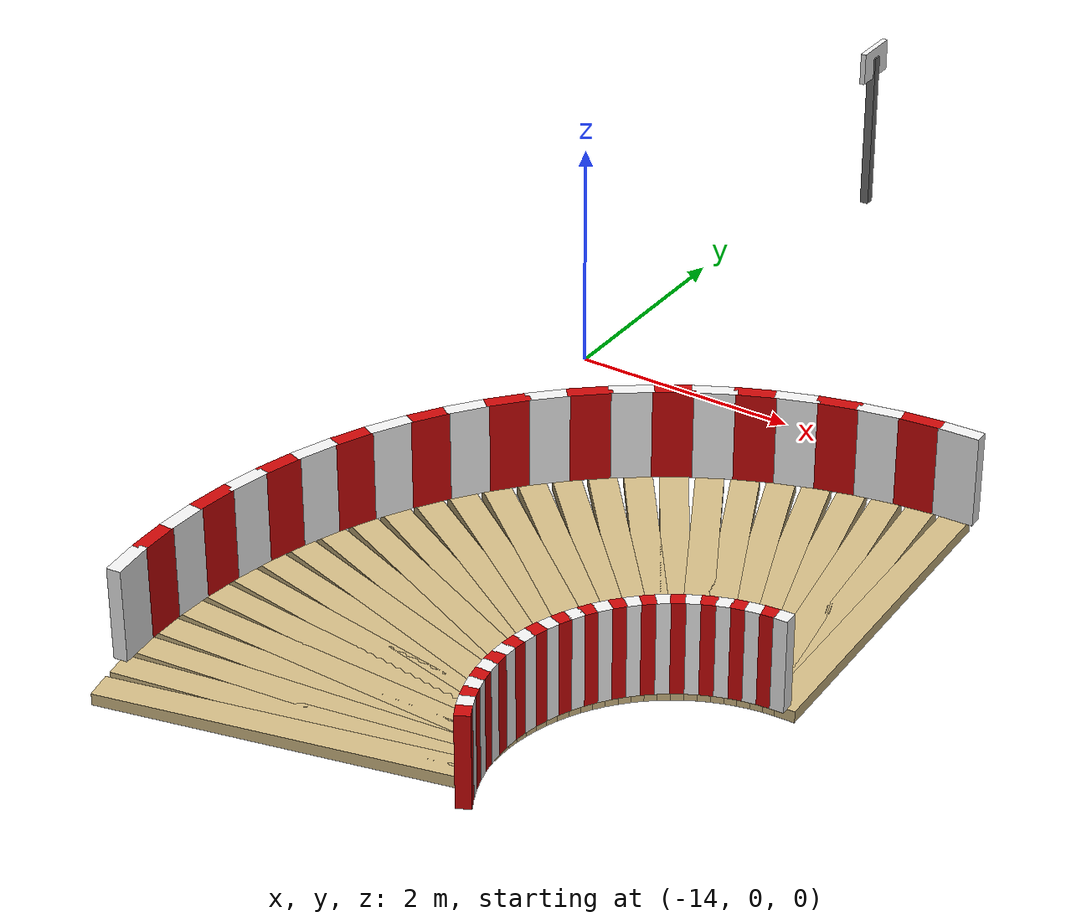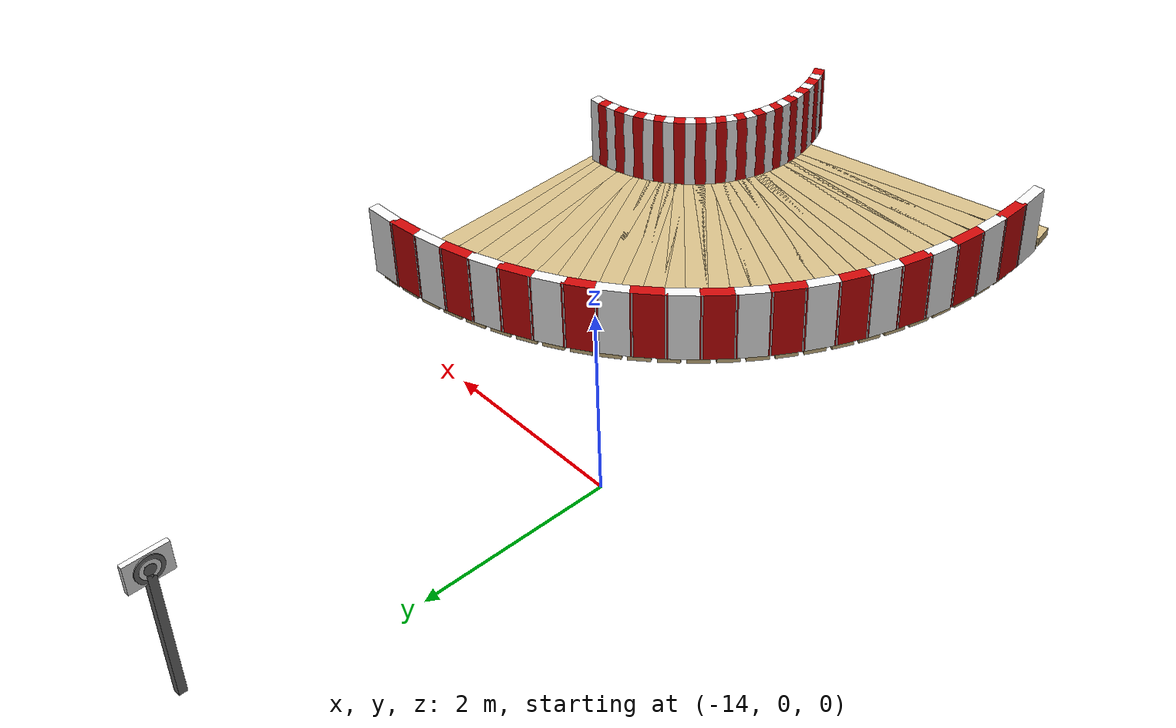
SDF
<sdf version="1.6">
 <world name="evrenos_teknofest_2026">
  <include><uri>model://sun</uri></include>
  <model name="main_course">
   <static>true</static>
   <link name="left_turn_road_20">
    <pose>-12.9216 -5.6812 -0.0500 0.000000 0.000000 -4.483315</pose>
    <collision name="left_turn_road_20_collision">
     <geometry><box><size>0.2356 3.0000 0.1000</size></box></geometry>
    </collision>
    <visual name="left_turn_road_20_visual">
     <geometry><box><size>0.2356 3.0000 0.1000</size></box></geometry>
     <material><ambient>0.82 0.73 0.52 1</ambient><diffuse>0.82 0.73 0.52 1</diffuse></material>
    </visual>
   </link>
   <link name="left_turn_road_21">
    <pose>-12.9599 -5.4887 -0.0500 0.000000 0.000000 -4.548764</pose>
    <collision name="left_turn_road_21_collision">
     <geometry><box><size>0.2356 3.0000 0.1000</size></box></geometry>
    </collision>
    <visual name="left_turn_road_21_visual">
     <geometry><box><size>0.2356 3.0000 0.1000</size></box></geometry>
     <material><ambient>0.82 0.73 0.52 1</ambient><diffuse>0.82 0.73 0.52 1</diffuse></material>
    </visual>
   </link>
   <link name="left_turn_road_22">
    <pose>-12.9856 -5.2941 -0.0500 0.000000 0.000000 -4.614214</pose>
    <collision name="left_turn_road_22_collision">
     <geometry><box><size>0.2356 3.0000 0.1000</size></box></geometry>
    </collision>
    <visual name="left_turn_road_22_visual">
     <geometry><box><size>0.2356 3.0000 0.1000</size></box></geometry>
     <material><ambient>0.82 0.73 0.52 1</ambient><diffuse>0.82 0.73 0.52 1</diffuse></material>
    </visual>
   </link>
   <link name="left_turn_road_23">
    <pose>-12.9984 -5.0982 -0.0500 0.000000 0.000000 -4.679664</pose>
    <collision name="left_turn_road_23_collision">
     <geometry><box><size>0.2356 3.0000 0.1000</size></box></geometry>
    </collision>
    <visual name="left_turn_road_23_visual">
     <geometry><box><size>0.2356 3.0000 0.1000</size></box></geometry>
     <material><ambient>0.82 0.73 0.52 1</ambient><diffuse>0.82 0.73 0.52 1</diffuse></material>
    </visual>
   </link>
   <link name="left_turn_road_24">
    <pose>-12.9984 -4.9018 -0.0500 0.000000 0.000000 -4.745114</pose>
    <collision name="left_turn_road_24_collision">
     <geometry><box><size>0.2356 3.0000 0.1000</size></box></geometry>
    </collision>
    <visual name="left_turn_road_24_visual">
     <geometry><box><size>0.2356 3.0000 0.1000</size></box></geometry>
     <material><ambient>0.82 0.73 0.52 1</ambient><diffuse>0.82 0.73 0.52 1</diffuse></material>
    </visual>
   </link>
   <link name="left_turn_road_25">
    <pose>-12.9856 -4.7059 -0.0500 0.000000 0.000000 -4.810564</pose>
    <collision name="left_turn_road_25_collision">
     <geometry><box><size>0.2356 3.0000 0.1000</size></box></geometry>
    </collision>
    <visual name="left_turn_road_25_visual">
     <geometry><box><size>0.2356 3.0000 0.1000</size></box></geometry>
     <material><ambient>0.82 0.73 0.52 1</ambient><diffuse>0.82 0.73 0.52 1</diffuse></material>
    </visual>
   </link>
   <link name="left_turn_road_26">
    <pose>-12.9599 -4.5113 -0.0500 0.000000 0.000000 -4.876014</pose>
    <collision name="left_turn_road_26_collision">
     <geometry><box><size>0.2356 3.0000 0.1000</size></box></geometry>
    </collision>
    <visual name="left_turn_road_26_visual">
     <geometry><box><size>0.2356 3.0000 0.1000</size></box></geometry>
     <material><ambient>0.82 0.73 0.52 1</ambient><diffuse>0.82 0.73 0.52 1</diffuse></material>
    </visual>
   </link>
   <link name="left_turn_road_27">
    <pose>-12.9216 -4.3188 -0.0500 0.000000 0.000000 -4.941463</pose>
    <collision name="left_turn_road_27_collision">
     <geometry><box><size>0.2356 3.0000 0.1000</size></box></geometry>
    </collision>
    <visual name="left_turn_road_27_visual">
     <geometry><box><size>0.2356 3.0000 0.1000</size></box></geometry>
     <material><ambient>0.82 0.73 0.52 1</ambient><diffuse>0.82 0.73 0.52 1</diffuse></material>
    </visual>
   </link>
   <link name="left_turn_road_28">
    <pose>-12.8708 -4.1291 -0.0500 0.000000 0.000000 -5.006913</pose>
    <collision name="left_turn_road_28_collision">
     <geometry><box><size>0.2356 3.0000 0.1000</size></box></geometry>
    </collision>
    <visual name="left_turn_road_28_visual">
     <geometry><box><size>0.2356 3.0000 0.1000</size></box></geometry>
     <material><ambient>0.82 0.73 0.52 1</ambient><diffuse>0.82 0.73 0.52 1</diffuse></material>
    </visual>
   </link>
   <link name="left_turn_road_29">
    <pose>-12.8077 -3.9432 -0.0500 0.000000 0.000000 -5.072363</pose>
    <collision name="left_turn_road_29_collision">
     <geometry><box><size>0.2356 3.0000 0.1000</size></box></geometry>
    </collision>
    <visual name="left_turn_road_29_visual">
     <geometry><box><size>0.2356 3.0000 0.1000</size></box></geometry>
     <material><ambient>0.82 0.73 0.52 1</ambient><diffuse>0.82 0.73 0.52 1</diffuse></material>
    </visual>
   </link>
   <link name="left_turn_road_30">
    <pose>-12.7326 -3.7619 -0.0500 0.000000 0.000000 -5.137813</pose>
    <collision name="left_turn_road_30_collision">
     <geometry><box><size>0.2356 3.0000 0.1000</size></box></geometry>
    </collision>
    <visual name="left_turn_road_30_visual">
     <geometry><box><size>0.2356 3.0000 0.1000</size></box></geometry>
     <material><ambient>0.82 0.73 0.52 1</ambient><diffuse>0.82 0.73 0.52 1</diffuse></material>
    </visual>
   </link>
   <link name="left_turn_road_31">
    <pose>-12.6458 -3.5858 -0.0500 0.000000 0.000000 -5.203263</pose>
    <collision name="left_turn_road_31_collision">
     <geometry><box><size>0.2356 3.0000 0.1000</size></box></geometry>
    </collision>
    <visual name="left_turn_road_31_visual">
     <geometry><box><size>0.2356 3.0000 0.1000</size></box></geometry>
     <material><ambient>0.82 0.73 0.52 1</ambient><diffuse>0.82 0.73 0.52 1</diffuse></material>
    </visual>
   </link>
   <link name="left_turn_road_32">
    <pose>-12.5476 -3.4158 -0.0500 0.000000 0.000000 -5.268713</pose>
    <collision name="left_turn_road_32_collision">
     <geometry><box><size>0.2356 3.0000 0.1000</size></box></geometry>
    </collision>
    <visual name="left_turn_road_32_visual">
     <geometry><box><size>0.2356 3.0000 0.1000</size></box></geometry>
     <material><ambient>0.82 0.73 0.52 1</ambient><diffuse>0.82 0.73 0.52 1</diffuse></material>
    </visual>
   </link>
   <link name="left_turn_road_33">
    <pose>-12.4385 -3.2526 -0.0500 0.000000 0.000000 -5.334163</pose>
    <collision name="left_turn_road_33_collision">
     <geometry><box><size>0.2356 3.0000 0.1000</size></box></geometry>
    </collision>
    <visual name="left_turn_road_33_visual">
     <geometry><box><size>0.2356 3.0000 0.1000</size></box></geometry>
     <material><ambient>0.82 0.73 0.52 1</ambient><diffuse>0.82 0.73 0.52 1</diffuse></material>
    </visual>
   </link>
   <link name="left_turn_road_34">
    <pose>-12.3190 -3.0968 -0.0500 0.000000 0.000000 -5.399612</pose>
    <collision name="left_turn_road_34_collision">
     <geometry><box><size>0.2356 3.0000 0.1000</size></box></geometry>
    </collision>
    <visual name="left_turn_road_34_visual">
     <geometry><box><size>0.2356 3.0000 0.1000</size></box></geometry>
     <material><ambient>0.82 0.73 0.52 1</ambient><diffuse>0.82 0.73 0.52 1</diffuse></material>
    </visual>
   </link>
   <link name="left_turn_road_35">
    <pose>-12.1896 -2.9492 -0.0500 0.000000 0.000000 -5.465062</pose>
    <collision name="left_turn_road_35_collision">
     <geometry><box><size>0.2356 3.0000 0.1000</size></box></geometry>
    </collision>
    <visual name="left_turn_road_35_visual">
     <geometry><box><size>0.2356 3.0000 0.1000</size></box></geometry>
     <material><ambient>0.82 0.73 0.52 1</ambient><diffuse>0.82 0.73 0.52 1</diffuse></material>
    </visual>
   </link>
   <link name="left_turn_road_36">
    <pose>-12.0508 -2.8104 -0.0500 0.000000 0.000000 -5.530512</pose>
    <collision name="left_turn_road_36_collision">
     <geometry><box><size>0.2356 3.0000 0.1000</size></box></geometry>
    </collision>
    <visual name="left_turn_road_36_visual">
     <geometry><box><size>0.2356 3.0000 0.1000</size></box></geometry>
     <material><ambient>0.82 0.73 0.52 1</ambient><diffuse>0.82 0.73 0.52 1</diffuse></material>
    </visual>
   </link>
   <link name="left_turn_road_37">
    <pose>-11.9032 -2.6810 -0.0500 0.000000 0.000000 -5.595962</pose>
    <collision name="left_turn_road_37_collision">
     <geometry><box><size>0.2356 3.0000 0.1000</size></box></geometry>
    </collision>
    <visual name="left_turn_road_37_visual">
     <geometry><box><size>0.2356 3.0000 0.1000</size></box></geometry>
     <material><ambient>0.82 0.73 0.52 1</ambient><diffuse>0.82 0.73 0.52 1</diffuse></material>
    </visual>
   </link>
   <link name="left_turn_road_38">
    <pose>-11.7474 -2.5615 -0.0500 0.000000 0.000000 -5.661412</pose>
    <collision name="left_turn_road_38_collision">
     <geometry><box><size>0.2356 3.0000 0.1000</size></box></geometry>
    </collision>
    <visual name="left_turn_road_38_visual">
     <geometry><box><size>0.2356 3.0000 0.1000</size></box></geometry>
     <material><ambient>0.82 0.73 0.52 1</ambient><diffuse>0.82 0.73 0.52 1</diffuse></material>
    </visual>
   </link>
   <link name="left_turn_road_39">
    <pose>-11.5842 -2.4524 -0.0500 0.000000 0.000000 -5.726862</pose>
    <collision name="left_turn_road_39_collision">
     <geometry><box><size>0.2356 3.0000 0.1000</size></box></geometry>
    </collision>
    <visual name="left_turn_road_39_visual">
     <geometry><box><size>0.2356 3.0000 0.1000</size></box></geometry>
     <material><ambient>0.82 0.73 0.52 1</ambient><diffuse>0.82 0.73 0.52 1</diffuse></material>
    </visual>
   </link>
   <link name="left_turn_road_40">
    <pose>-11.4142 -2.3542 -0.0500 0.000000 0.000000 -5.792311</pose>
    <collision name="left_turn_road_40_collision">
     <geometry><box><size>0.2356 3.0000 0.1000</size></box></geometry>
    </collision>
    <visual name="left_turn_road_40_visual">
     <geometry><box><size>0.2356 3.0000 0.1000</size></box></geometry>
     <material><ambient>0.82 0.73 0.52 1</ambient><diffuse>0.82 0.73 0.52 1</diffuse></material>
    </visual>
   </link>
   <link name="left_turn_road_41">
    <pose>-11.2381 -2.2674 -0.0500 0.000000 0.000000 -5.857761</pose>
    <collision name="left_turn_road_41_collision">
     <geometry><box><size>0.2356 3.0000 0.1000</size></box></geometry>
    </collision>
    <visual name="left_turn_road_41_visual">
     <geometry><box><size>0.2356 3.0000 0.1000</size></box></geometry>
     <material><ambient>0.82 0.73 0.52 1</ambient><diffuse>0.82 0.73 0.52 1</diffuse></material>
    </visual>
   </link>
   <link name="left_turn_road_42">
    <pose>-11.0568 -2.1923 -0.0500 0.000000 0.000000 -5.923211</pose>
    <collision name="left_turn_road_42_collision">
     <geometry><box><size>0.2356 3.0000 0.1000</size></box></geometry>
    </collision>
    <visual name="left_turn_road_42_visual">
     <geometry><box><size>0.2356 3.0000 0.1000</size></box></geometry>
     <material><ambient>0.82 0.73 0.52 1</ambient><diffuse>0.82 0.73 0.52 1</diffuse></material>
    </visual>
   </link>
   <link name="left_turn_road_43">
    <pose>-10.8709 -2.1292 -0.0500 0.000000 0.000000 -5.988661</pose>
    <collision name="left_turn_road_43_collision">
     <geometry><box><size>0.2356 3.0000 0.1000</size></box></geometry>
    </collision>
    <visual name="left_turn_road_43_visual">
     <geometry><box><size>0.2356 3.0000 0.1000</size></box></geometry>
     <material><ambient>0.82 0.73 0.52 1</ambient><diffuse>0.82 0.73 0.52 1</diffuse></material>
    </visual>
   </link>
   <link name="left_turn_road_44">
    <pose>-10.6812 -2.0784 -0.0500 0.000000 0.000000 -6.054111</pose>
    <collision name="left_turn_road_44_collision">
     <geometry><box><size>0.2356 3.0000 0.1000</size></box></geometry>
    </collision>
    <visual name="left_turn_road_44_visual">
     <geometry><box><size>0.2356 3.0000 0.1000</size></box></geometry>
     <material><ambient>0.82 0.73 0.52 1</ambient><diffuse>0.82 0.73 0.52 1</diffuse></material>
    </visual>
   </link>
   <link name="left_turn_road_45">
    <pose>-10.4887 -2.0401 -0.0500 0.000000 0.000000 -6.119561</pose>
    <collision name="left_turn_road_45_collision">
     <geometry><box><size>0.2356 3.0000 0.1000</size></box></geometry>
    </collision>
    <visual name="left_turn_road_45_visual">
     <geometry><box><size>0.2356 3.0000 0.1000</size></box></geometry>
     <material><ambient>0.82 0.73 0.52 1</ambient><diffuse>0.82 0.73 0.52 1</diffuse></material>
    </visual>
   </link>
   <link name="left_turn_road_46">
    <pose>-10.2941 -2.0144 -0.0500 0.000000 0.000000 -6.185011</pose>
    <collision name="left_turn_road_46_collision">
     <geometry><box><size>0.2356 3.0000 0.1000</size></box></geometry>
    </collision>
    <visual name="left_turn_road_46_visual">
     <geometry><box><size>0.2356 3.0000 0.1000</size></box></geometry>
     <material><ambient>0.82 0.73 0.52 1</ambient><diffuse>0.82 0.73 0.52 1</diffuse></material>
    </visual>
   </link>
   <link name="left_turn_road_47">
    <pose>-10.0982 -2.0016 -0.0500 0.000000 0.000000 -6.250460</pose>
    <collision name="left_turn_road_47_collision">
     <geometry><box><size>0.2356 3.0000 0.1000</size></box></geometry>
    </collision>
    <visual name="left_turn_road_47_visual">
     <geometry><box><size>0.2356 3.0000 0.1000</size></box></geometry>
     <material><ambient>0.82 0.73 0.52 1</ambient><diffuse>0.82 0.73 0.52 1</diffuse></material>
    </visual>
   </link>
   <link name="target_post">
    <pose>-13.4000 4.0000 0.7500 0.000000 0.000000 0.000000</pose>
    <collision name="target_post_collision">
     <geometry><box><size>0.0800 0.0800 1.5000</size></box></geometry>
    </collision>
    <visual name="target_post_visual">
     <geometry><box><size>0.0800 0.0800 1.5000</size></box></geometry>
     <material><ambient>0.45 0.45 0.45 1</ambient><diffuse>0.45 0.45 0.45 1</diffuse></material>
    </visual>
   </link>
   <link name="target_panel">
    <pose>-13.4000 4.0000 1.4500 0.000000 0.000000 0.000000</pose>
    <collision name="target_panel_collision">
     <geometry><box><size>0.0500 0.4200 0.2970</size></box></geometry>
    </collision>
    <visual name="target_panel_visual">
     <geometry><box><size>0.0500 0.4200 0.2970</size></box></geometry>
     <material><ambient>0.95 0.95 0.95 1</ambient><diffuse>0.95 0.95 0.95 1</diffuse></material>
    </visual>
   </link>
   <link name="target_ring_0">
    <pose>-13.4310 4.0000 1.4500 0.000000 1.570796 0.000000</pose>
    <visual name="target_ring_0_visual">
     <geometry><cylinder><radius>0.1350</radius><length>0.0120</length></cylinder></geometry>
     <material><ambient>0.45 0.45 0.45 1</ambient><diffuse>0.45 0.45 0.45 1</diffuse></material>
    </visual>
   </link>
   <link name="target_ring_1">
    <pose>-13.4340 4.0000 1.4500 0.000000 1.570796 0.000000</pose>
    <visual name="target_ring_1_visual">
     <geometry><cylinder><radius>0.0950</radius><length>0.0120</length></cylinder></geometry>
     <material><ambient>0.95 0.95 0.95 1</ambient><diffuse>0.95 0.95 0.95 1</diffuse></material>
    </visual>
   </link>
   <link name="target_ring_2">
    <pose>-13.4370 4.0000 1.4500 0.000000 1.570796 0.000000</pose>
    <visual name="target_ring_2_visual">
     <geometry><cylinder><radius>0.0550</radius><length>0.0120</length></cylinder></geometry>
     <material><ambient>0.45 0.45 0.45 1</ambient><diffuse>0.45 0.45 0.45 1</diffuse></material>
    </visual>
   </link>
   <link name="left_turn_bar_0_14">
    <pose>-11.3262 -5.7009 0.4000 0.000000 0.000000 -4.226190</pose>
    <collision name="left_turn_bar_0_14_collision">
     <geometry><box><size>0.1234 0.1200 0.8000</size></box></geometry>
    </collision>
    <visual name="left_turn_bar_0_14_visual">
     <geometry><box><size>0.1234 0.1200 0.8000</size></box></geometry>
     <material><ambient>0.8 0.03 0.03 1</ambient><diffuse>0.8 0.03 0.03 1</diffuse></material>
    </visual>
   </link>
   <link name="left_turn_bar_0_15">
    <pose>-11.3748 -5.5998 0.4000 0.000000 0.000000 -4.300990</pose>
    <collision name="left_turn_bar_0_15_collision">
     <geometry><box><size>0.1234 0.1200 0.8000</size></box></geometry>
    </collision>
    <visual name="left_turn_bar_0_15_visual">
     <geometry><box><size>0.1234 0.1200 0.8000</size></box></geometry>
     <material><ambient>0.95 0.95 0.95 1</ambient><diffuse>0.95 0.95 0.95 1</diffuse></material>
    </visual>
   </link>
   <link name="left_turn_bar_0_16">
    <pose>-11.4158 -5.4954 0.4000 0.000000 0.000000 -4.375790</pose>
    <collision name="left_turn_bar_0_16_collision">
     <geometry><box><size>0.1234 0.1200 0.8000</size></box></geometry>
    </collision>
    <visual name="left_turn_bar_0_16_visual">
     <geometry><box><size>0.1234 0.1200 0.8000</size></box></geometry>
     <material><ambient>0.8 0.03 0.03 1</ambient><diffuse>0.8 0.03 0.03 1</diffuse></material>
    </visual>
   </link>
   <link name="left_turn_bar_0_17">
    <pose>-11.4489 -5.3882 0.4000 0.000000 0.000000 -4.450590</pose>
    <collision name="left_turn_bar_0_17_collision">
     <geometry><box><size>0.1234 0.1200 0.8000</size></box></geometry>
    </collision>
    <visual name="left_turn_bar_0_17_visual">
     <geometry><box><size>0.1234 0.1200 0.8000</size></box></geometry>
     <material><ambient>0.95 0.95 0.95 1</ambient><diffuse>0.95 0.95 0.95 1</diffuse></material>
    </visual>
   </link>
   <link name="left_turn_bar_0_18">
    <pose>-11.4738 -5.2789 0.4000 0.000000 0.000000 -4.525389</pose>
    <collision name="left_turn_bar_0_18_collision">
     <geometry><box><size>0.1234 0.1200 0.8000</size></box></geometry>
    </collision>
    <visual name="left_turn_bar_0_18_visual">
     <geometry><box><size>0.1234 0.1200 0.8000</size></box></geometry>
     <material><ambient>0.8 0.03 0.03 1</ambient><diffuse>0.8 0.03 0.03 1</diffuse></material>
    </visual>
   </link>
   <link name="left_turn_bar_0_19">
    <pose>-11.4906 -5.1679 0.4000 0.000000 0.000000 -4.600189</pose>
    <collision name="left_turn_bar_0_19_collision">
     <geometry><box><size>0.1234 0.1200 0.8000</size></box></geometry>
    </collision>
    <visual name="left_turn_bar_0_19_visual">
     <geometry><box><size>0.1234 0.1200 0.8000</size></box></geometry>
     <material><ambient>0.95 0.95 0.95 1</ambient><diffuse>0.95 0.95 0.95 1</diffuse></material>
    </visual>
   </link>
   <link name="left_turn_bar_0_20">
    <pose>-11.4990 -5.0561 0.4000 0.000000 0.000000 -4.674989</pose>
    <collision name="left_turn_bar_0_20_collision">
     <geometry><box><size>0.1234 0.1200 0.8000</size></box></geometry>
    </collision>
    <visual name="left_turn_bar_0_20_visual">
     <geometry><box><size>0.1234 0.1200 0.8000</size></box></geometry>
     <material><ambient>0.8 0.03 0.03 1</ambient><diffuse>0.8 0.03 0.03 1</diffuse></material>
    </visual>
   </link>
   <link name="left_turn_bar_0_21">
    <pose>-11.4990 -4.9439 0.4000 0.000000 0.000000 -4.749789</pose>
    <collision name="left_turn_bar_0_21_collision">
     <geometry><box><size>0.1234 0.1200 0.8000</size></box></geometry>
    </collision>
    <visual name="left_turn_bar_0_21_visual">
     <geometry><box><size>0.1234 0.1200 0.8000</size></box></geometry>
     <material><ambient>0.95 0.95 0.95 1</ambient><diffuse>0.95 0.95 0.95 1</diffuse></material>
    </visual>
   </link>
   <link name="left_turn_bar_0_22">
    <pose>-11.4906 -4.8321 0.4000 0.000000 0.000000 -4.824589</pose>
    <collision name="left_turn_bar_0_22_collision">
     <geometry><box><size>0.1234 0.1200 0.8000</size></box></geometry>
    </collision>
    <visual name="left_turn_bar_0_22_visual">
     <geometry><box><size>0.1234 0.1200 0.8000</size></box></geometry>
     <material><ambient>0.8 0.03 0.03 1</ambient><diffuse>0.8 0.03 0.03 1</diffuse></material>
    </visual>
   </link>
   <link name="left_turn_bar_0_23">
    <pose>-11.4738 -4.7211 0.4000 0.000000 0.000000 -4.899389</pose>
    <collision name="left_turn_bar_0_23_collision">
     <geometry><box><size>0.1234 0.1200 0.8000</size></box></geometry>
    </collision>
    <visual name="left_turn_bar_0_23_visual">
     <geometry><box><size>0.1234 0.1200 0.8000</size></box></geometry>
     <material><ambient>0.95 0.95 0.95 1</ambient><diffuse>0.95 0.95 0.95 1</diffuse></material>
    </visual>
   </link>
   <link name="left_turn_bar_0_24">
    <pose>-11.4489 -4.6118 0.4000 0.000000 0.000000 -4.974188</pose>
    <collision name="left_turn_bar_0_24_collision">
     <geometry><box><size>0.1234 0.1200 0.8000</size></box></geometry>
    </collision>
    <visual name="left_turn_bar_0_24_visual">
     <geometry><box><size>0.1234 0.1200 0.8000</size></box></geometry>
     <material><ambient>0.8 0.03 0.03 1</ambient><diffuse>0.8 0.03 0.03 1</diffuse></material>
    </visual>
   </link>
   <link name="left_turn_bar_0_25">
    <pose>-11.4158 -4.5046 0.4000 0.000000 0.000000 -5.048988</pose>
    <collision name="left_turn_bar_0_25_collision">
     <geometry><box><size>0.1234 0.1200 0.8000</size></box></geometry>
    </collision>
    <visual name="left_turn_bar_0_25_visual">
     <geometry><box><size>0.1234 0.1200 0.8000</size></box></geometry>
     <material><ambient>0.95 0.95 0.95 1</ambient><diffuse>0.95 0.95 0.95 1</diffuse></material>
    </visual>
   </link>
   <link name="left_turn_bar_0_26">
    <pose>-11.3748 -4.4002 0.4000 0.000000 0.000000 -5.123788</pose>
    <collision name="left_turn_bar_0_26_collision">
     <geometry><box><size>0.1234 0.1200 0.8000</size></box></geometry>
    </collision>
    <visual name="left_turn_bar_0_26_visual">
     <geometry><box><size>0.1234 0.1200 0.8000</size></box></geometry>
     <material><ambient>0.8 0.03 0.03 1</ambient><diffuse>0.8 0.03 0.03 1</diffuse></material>
    </visual>
   </link>
   <link name="left_turn_bar_0_27">
    <pose>-11.3262 -4.2991 0.4000 0.000000 0.000000 -5.198588</pose>
    <collision name="left_turn_bar_0_27_collision">
     <geometry><box><size>0.1234 0.1200 0.8000</size></box></geometry>
    </collision>
    <visual name="left_turn_bar_0_27_visual">
     <geometry><box><size>0.1234 0.1200 0.8000</size></box></geometry>
     <material><ambient>0.95 0.95 0.95 1</ambient><diffuse>0.95 0.95 0.95 1</diffuse></material>
    </visual>
   </link>
   <link name="left_turn_bar_0_28">
    <pose>-11.2701 -4.2020 0.4000 0.000000 0.000000 -5.273388</pose>
    <collision name="left_turn_bar_0_28_collision">
     <geometry><box><size>0.1234 0.1200 0.8000</size></box></geometry>
    </collision>
    <visual name="left_turn_bar_0_28_visual">
     <geometry><box><size>0.1234 0.1200 0.8000</size></box></geometry>
     <material><ambient>0.8 0.03 0.03 1</ambient><diffuse>0.8 0.03 0.03 1</diffuse></material>
    </visual>
   </link>
   <link name="left_turn_bar_0_29">
    <pose>-11.2069 -4.1093 0.4000 0.000000 0.000000 -5.348187</pose>
    <collision name="left_turn_bar_0_29_collision">
     <geometry><box><size>0.1234 0.1200 0.8000</size></box></geometry>
    </collision>
    <visual name="left_turn_bar_0_29_visual">
     <geometry><box><size>0.1234 0.1200 0.8000</size></box></geometry>
     <material><ambient>0.95 0.95 0.95 1</ambient><diffuse>0.95 0.95 0.95 1</diffuse></material>
    </visual>
   </link>
   <link name="left_turn_bar_0_30">
    <pose>-11.1370 -4.0216 0.4000 0.000000 0.000000 -5.422987</pose>
    <collision name="left_turn_bar_0_30_collision">
     <geometry><box><size>0.1234 0.1200 0.8000</size></box></geometry>
    </collision>
    <visual name="left_turn_bar_0_30_visual">
     <geometry><box><size>0.1234 0.1200 0.8000</size></box></geometry>
     <material><ambient>0.8 0.03 0.03 1</ambient><diffuse>0.8 0.03 0.03 1</diffuse></material>
    </visual>
   </link>
   <link name="left_turn_bar_0_31">
    <pose>-11.0607 -3.9393 0.4000 0.000000 0.000000 -5.497787</pose>
    <collision name="left_turn_bar_0_31_collision">
     <geometry><box><size>0.1234 0.1200 0.8000</size></box></geometry>
    </collision>
    <visual name="left_turn_bar_0_31_visual">
     <geometry><box><size>0.1234 0.1200 0.8000</size></box></geometry>
     <material><ambient>0.95 0.95 0.95 1</ambient><diffuse>0.95 0.95 0.95 1</diffuse></material>
    </visual>
   </link>
   <link name="left_turn_bar_0_32">
    <pose>-10.9784 -3.8630 0.4000 0.000000 0.000000 -5.572587</pose>
    <collision name="left_turn_bar_0_32_collision">
     <geometry><box><size>0.1234 0.1200 0.8000</size></box></geometry>
    </collision>
    <visual name="left_turn_bar_0_32_visual">
     <geometry><box><size>0.1234 0.1200 0.8000</size></box></geometry>
     <material><ambient>0.8 0.03 0.03 1</ambient><diffuse>0.8 0.03 0.03 1</diffuse></material>
    </visual>
   </link>
   <link name="left_turn_bar_0_33">
    <pose>-10.8907 -3.7931 0.4000 0.000000 0.000000 -5.647387</pose>
    <collision name="left_turn_bar_0_33_collision">
     <geometry><box><size>0.1234 0.1200 0.8000</size></box></geometry>
    </collision>
    <visual name="left_turn_bar_0_33_visual">
     <geometry><box><size>0.1234 0.1200 0.8000</size></box></geometry>
     <material><ambient>0.95 0.95 0.95 1</ambient><diffuse>0.95 0.95 0.95 1</diffuse></material>
    </visual>
   </link>
   <link name="left_turn_bar_0_34">
    <pose>-10.7980 -3.7299 0.4000 0.000000 0.000000 -5.722187</pose>
    <collision name="left_turn_bar_0_34_collision">
     <geometry><box><size>0.1234 0.1200 0.8000</size></box></geometry>
    </collision>
    <visual name="left_turn_bar_0_34_visual">
     <geometry><box><size>0.1234 0.1200 0.8000</size></box></geometry>
     <material><ambient>0.8 0.03 0.03 1</ambient><diffuse>0.8 0.03 0.03 1</diffuse></material>
    </visual>
   </link>
   <link name="left_turn_bar_0_35">
    <pose>-10.7009 -3.6738 0.4000 0.000000 0.000000 -5.796986</pose>
    <collision name="left_turn_bar_0_35_collision">
     <geometry><box><size>0.1234 0.1200 0.8000</size></box></geometry>
    </collision>
    <visual name="left_turn_bar_0_35_visual">
     <geometry><box><size>0.1234 0.1200 0.8000</size></box></geometry>
     <material><ambient>0.95 0.95 0.95 1</ambient><diffuse>0.95 0.95 0.95 1</diffuse></material>
    </visual>
   </link>
   <link name="left_turn_bar_0_36">
    <pose>-10.5998 -3.6252 0.4000 0.000000 0.000000 -5.871786</pose>
    <collision name="left_turn_bar_0_36_collision">
     <geometry><box><size>0.1234 0.1200 0.8000</size></box></geometry>
    </collision>
    <visual name="left_turn_bar_0_36_visual">
     <geometry><box><size>0.1234 0.1200 0.8000</size></box></geometry>
     <material><ambient>0.8 0.03 0.03 1</ambient><diffuse>0.8 0.03 0.03 1</diffuse></material>
    </visual>
   </link>
   <link name="left_turn_bar_0_37">
    <pose>-10.4954 -3.5842 0.4000 0.000000 0.000000 -5.946586</pose>
    <collision name="left_turn_bar_0_37_collision">
     <geometry><box><size>0.1234 0.1200 0.8000</size></box></geometry>
    </collision>
    <visual name="left_turn_bar_0_37_visual">
     <geometry><box><size>0.1234 0.1200 0.8000</size></box></geometry>
     <material><ambient>0.95 0.95 0.95 1</ambient><diffuse>0.95 0.95 0.95 1</diffuse></material>
    </visual>
   </link>
   <link name="left_turn_bar_0_38">
    <pose>-10.3882 -3.5511 0.4000 0.000000 0.000000 -6.021386</pose>
    <collision name="left_turn_bar_0_38_collision">
     <geometry><box><size>0.1234 0.1200 0.8000</size></box></geometry>
    </collision>
    <visual name="left_turn_bar_0_38_visual">
     <geometry><box><size>0.1234 0.1200 0.8000</size></box></geometry>
     <material><ambient>0.8 0.03 0.03 1</ambient><diffuse>0.8 0.03 0.03 1</diffuse></material>
    </visual>
   </link>
   <link name="left_turn_bar_0_39">
    <pose>-10.2789 -3.5262 0.4000 0.000000 0.000000 -6.096186</pose>
    <collision name="left_turn_bar_0_39_collision">
     <geometry><box><size>0.1234 0.1200 0.8000</size></box></geometry>
    </collision>
    <visual name="left_turn_bar_0_39_visual">
     <geometry><box><size>0.1234 0.1200 0.8000</size></box></geometry>
     <material><ambient>0.95 0.95 0.95 1</ambient><diffuse>0.95 0.95 0.95 1</diffuse></material>
    </visual>
   </link>
   <link name="left_turn_bar_0_40">
    <pose>-10.1679 -3.5094 0.4000 0.000000 0.000000 -6.170986</pose>
    <collision name="left_turn_bar_0_40_collision">
     <geometry><box><size>0.1234 0.1200 0.8000</size></box></geometry>
    </collision>
    <visual name="left_turn_bar_0_40_visual">
     <geometry><box><size>0.1234 0.1200 0.8000</size></box></geometry>
     <material><ambient>0.8 0.03 0.03 1</ambient><diffuse>0.8 0.03 0.03 1</diffuse></material>
    </visual>
   </link>
   <link name="left_turn_bar_0_41">
    <pose>-10.0561 -3.5010 0.4000 0.000000 0.000000 -6.245785</pose>
    <collision name="left_turn_bar_0_41_collision">
     <geometry><box><size>0.1234 0.1200 0.8000</size></box></geometry>
    </collision>
    <visual name="left_turn_bar_0_41_visual">
     <geometry><box><size>0.1234 0.1200 0.8000</size></box></geometry>
     <material><ambient>0.95 0.95 0.95 1</ambient><diffuse>0.95 0.95 0.95 1</diffuse></material>
    </visual>
   </link>
   <link name="left_turn_bar_1_19">
    <pose>-14.4717 -5.5038 0.4000 0.000000 0.000000 -4.600189</pose>
    <collision name="left_turn_bar_1_19_collision">
     <geometry><box><size>0.3703 0.1200 0.8000</size></box></geometry>
    </collision>
    <visual name="left_turn_bar_1_19_visual">
     <geometry><box><size>0.3703 0.1200 0.8000</size></box></geometry>
     <material><ambient>0.95 0.95 0.95 1</ambient><diffuse>0.95 0.95 0.95 1</diffuse></material>
    </visual>
   </link>
   <link name="left_turn_bar_1_20">
    <pose>-14.4969 -5.1683 0.4000 0.000000 0.000000 -4.674989</pose>
    <collision name="left_turn_bar_1_20_collision">
     <geometry><box><size>0.3703 0.1200 0.8000</size></box></geometry>
    </collision>
    <visual name="left_turn_bar_1_20_visual">
     <geometry><box><size>0.3703 0.1200 0.8000</size></box></geometry>
     <material><ambient>0.8 0.03 0.03 1</ambient><diffuse>0.8 0.03 0.03 1</diffuse></material>
    </visual>
   </link>
   <link name="left_turn_bar_1_21">
    <pose>-14.4969 -4.8317 0.4000 0.000000 0.000000 -4.749789</pose>
    <collision name="left_turn_bar_1_21_collision">
     <geometry><box><size>0.3703 0.1200 0.8000</size></box></geometry>
    </collision>
    <visual name="left_turn_bar_1_21_visual">
     <geometry><box><size>0.3703 0.1200 0.8000</size></box></geometry>
     <material><ambient>0.95 0.95 0.95 1</ambient><diffuse>0.95 0.95 0.95 1</diffuse></material>
    </visual>
   </link>
   <link name="left_turn_bar_1_22">
    <pose>-14.4717 -4.4962 0.4000 0.000000 0.000000 -4.824589</pose>
    <collision name="left_turn_bar_1_22_collision">
     <geometry><box><size>0.3703 0.1200 0.8000</size></box></geometry>
    </collision>
    <visual name="left_turn_bar_1_22_visual">
     <geometry><box><size>0.3703 0.1200 0.8000</size></box></geometry>
     <material><ambient>0.8 0.03 0.03 1</ambient><diffuse>0.8 0.03 0.03 1</diffuse></material>
    </visual>
   </link>
   <link name="left_turn_bar_1_23">
    <pose>-14.4215 -4.1634 0.4000 0.000000 0.000000 -4.899389</pose>
    <collision name="left_turn_bar_1_23_collision">
     <geometry><box><size>0.3703 0.1200 0.8000</size></box></geometry>
    </collision>
    <visual name="left_turn_bar_1_23_visual">
     <geometry><box><size>0.3703 0.1200 0.8000</size></box></geometry>
     <material><ambient>0.95 0.95 0.95 1</ambient><diffuse>0.95 0.95 0.95 1</diffuse></material>
    </visual>
   </link>
   <link name="left_turn_bar_1_24">
    <pose>-14.3467 -3.8353 0.4000 0.000000 0.000000 -4.974188</pose>
    <collision name="left_turn_bar_1_24_collision">
     <geometry><box><size>0.3703 0.1200 0.8000</size></box></geometry>
    </collision>
    <visual name="left_turn_bar_1_24_visual">
     <geometry><box><size>0.3703 0.1200 0.8000</size></box></geometry>
     <material><ambient>0.8 0.03 0.03 1</ambient><diffuse>0.8 0.03 0.03 1</diffuse></material>
    </visual>
   </link>
   <link name="left_turn_bar_1_25">
    <pose>-14.2475 -3.5137 0.4000 0.000000 0.000000 -5.048988</pose>
    <collision name="left_turn_bar_1_25_collision">
     <geometry><box><size>0.3703 0.1200 0.8000</size></box></geometry>
    </collision>
    <visual name="left_turn_bar_1_25_visual">
     <geometry><box><size>0.3703 0.1200 0.8000</size></box></geometry>
     <material><ambient>0.95 0.95 0.95 1</ambient><diffuse>0.95 0.95 0.95 1</diffuse></material>
    </visual>
   </link>
   <link name="left_turn_bar_1_26">
    <pose>-14.1245 -3.2005 0.4000 0.000000 0.000000 -5.123788</pose>
    <collision name="left_turn_bar_1_26_collision">
     <geometry><box><size>0.3703 0.1200 0.8000</size></box></geometry>
    </collision>
    <visual name="left_turn_bar_1_26_visual">
     <geometry><box><size>0.3703 0.1200 0.8000</size></box></geometry>
     <material><ambient>0.8 0.03 0.03 1</ambient><diffuse>0.8 0.03 0.03 1</diffuse></material>
    </visual>
   </link>
   <link name="left_turn_bar_1_27">
    <pose>-13.9785 -2.8973 0.4000 0.000000 0.000000 -5.198588</pose>
    <collision name="left_turn_bar_1_27_collision">
     <geometry><box><size>0.3703 0.1200 0.8000</size></box></geometry>
    </collision>
    <visual name="left_turn_bar_1_27_visual">
     <geometry><box><size>0.3703 0.1200 0.8000</size></box></geometry>
     <material><ambient>0.95 0.95 0.95 1</ambient><diffuse>0.95 0.95 0.95 1</diffuse></material>
    </visual>
   </link>
   <link name="left_turn_bar_1_28">
    <pose>-13.8103 -2.6059 0.4000 0.000000 0.000000 -5.273388</pose>
    <collision name="left_turn_bar_1_28_collision">
     <geometry><box><size>0.3703 0.1200 0.8000</size></box></geometry>
    </collision>
    <visual name="left_turn_bar_1_28_visual">
     <geometry><box><size>0.3703 0.1200 0.8000</size></box></geometry>
     <material><ambient>0.8 0.03 0.03 1</ambient><diffuse>0.8 0.03 0.03 1</diffuse></material>
    </visual>
   </link>
   <link name="left_turn_bar_1_29">
    <pose>-13.6207 -2.3278 0.4000 0.000000 0.000000 -5.348187</pose>
    <collision name="left_turn_bar_1_29_collision">
     <geometry><box><size>0.3703 0.1200 0.8000</size></box></geometry>
    </collision>
    <visual name="left_turn_bar_1_29_visual">
     <geometry><box><size>0.3703 0.1200 0.8000</size></box></geometry>
     <material><ambient>0.95 0.95 0.95 1</ambient><diffuse>0.95 0.95 0.95 1</diffuse></material>
    </visual>
   </link>
   <link name="left_turn_bar_1_30">
    <pose>-13.4109 -2.0647 0.4000 0.000000 0.000000 -5.422987</pose>
    <collision name="left_turn_bar_1_30_collision">
     <geometry><box><size>0.3703 0.1200 0.8000</size></box></geometry>
    </collision>
    <visual name="left_turn_bar_1_30_visual">
     <geometry><box><size>0.3703 0.1200 0.8000</size></box></geometry>
     <material><ambient>0.8 0.03 0.03 1</ambient><diffuse>0.8 0.03 0.03 1</diffuse></material>
    </visual>
   </link>
   <link name="left_turn_bar_1_31">
    <pose>-13.1820 -1.8180 0.4000 0.000000 0.000000 -5.497787</pose>
    <collision name="left_turn_bar_1_31_collision">
     <geometry><box><size>0.3703 0.1200 0.8000</size></box></geometry>
    </collision>
    <visual name="left_turn_bar_1_31_visual">
     <geometry><box><size>0.3703 0.1200 0.8000</size></box></geometry>
     <material><ambient>0.95 0.95 0.95 1</ambient><diffuse>0.95 0.95 0.95 1</diffuse></material>
    </visual>
   </link>
   <link name="left_turn_bar_1_32">
    <pose>-12.9353 -1.5891 0.4000 0.000000 0.000000 -5.572587</pose>
    <collision name="left_turn_bar_1_32_collision">
     <geometry><box><size>0.3703 0.1200 0.8000</size></box></geometry>
    </collision>
    <visual name="left_turn_bar_1_32_visual">
     <geometry><box><size>0.3703 0.1200 0.8000</size></box></geometry>
     <material><ambient>0.8 0.03 0.03 1</ambient><diffuse>0.8 0.03 0.03 1</diffuse></material>
    </visual>
   </link>
   <link name="left_turn_bar_1_33">
    <pose>-12.6722 -1.3793 0.4000 0.000000 0.000000 -5.647387</pose>
    <collision name="left_turn_bar_1_33_collision">
     <geometry><box><size>0.3703 0.1200 0.8000</size></box></geometry>
    </collision>
    <visual name="left_turn_bar_1_33_visual">
     <geometry><box><size>0.3703 0.1200 0.8000</size></box></geometry>
     <material><ambient>0.95 0.95 0.95 1</ambient><diffuse>0.95 0.95 0.95 1</diffuse></material>
    </visual>
   </link>
   <link name="left_turn_bar_1_34">
    <pose>-12.3941 -1.1897 0.4000 0.000000 0.000000 -5.722187</pose>
    <collision name="left_turn_bar_1_34_collision">
     <geometry><box><size>0.3703 0.1200 0.8000</size></box></geometry>
    </collision>
    <visual name="left_turn_bar_1_34_visual">
     <geometry><box><size>0.3703 0.1200 0.8000</size></box></geometry>
     <material><ambient>0.8 0.03 0.03 1</ambient><diffuse>0.8 0.03 0.03 1</diffuse></material>
    </visual>
   </link>
   <link name="left_turn_bar_1_35">
    <pose>-12.1027 -1.0215 0.4000 0.000000 0.000000 -5.796986</pose>
    <collision name="left_turn_bar_1_35_collision">
     <geometry><box><size>0.3703 0.1200 0.8000</size></box></geometry>
    </collision>
    <visual name="left_turn_bar_1_35_visual">
     <geometry><box><size>0.3703 0.1200 0.8000</size></box></geometry>
     <material><ambient>0.95 0.95 0.95 1</ambient><diffuse>0.95 0.95 0.95 1</diffuse></material>
    </visual>
   </link>
   <link name="left_turn_bar_1_36">
    <pose>-11.7995 -0.8755 0.4000 0.000000 0.000000 -5.871786</pose>
    <collision name="left_turn_bar_1_36_collision">
     <geometry><box><size>0.3703 0.1200 0.8000</size></box></geometry>
    </collision>
    <visual name="left_turn_bar_1_36_visual">
     <geometry><box><size>0.3703 0.1200 0.8000</size></box></geometry>
     <material><ambient>0.8 0.03 0.03 1</ambient><diffuse>0.8 0.03 0.03 1</diffuse></material>
    </visual>
   </link>
   <link name="left_turn_bar_1_37">
    <pose>-11.4863 -0.7525 0.4000 0.000000 0.000000 -5.946586</pose>
    <collision name="left_turn_bar_1_37_collision">
     <geometry><box><size>0.3703 0.1200 0.8000</size></box></geometry>
    </collision>
    <visual name="left_turn_bar_1_37_visual">
     <geometry><box><size>0.3703 0.1200 0.8000</size></box></geometry>
     <material><ambient>0.95 0.95 0.95 1</ambient><diffuse>0.95 0.95 0.95 1</diffuse></material>
    </visual>
   </link>
   <link name="left_turn_bar_1_38">
    <pose>-11.1647 -0.6533 0.4000 0.000000 0.000000 -6.021386</pose>
    <collision name="left_turn_bar_1_38_collision">
     <geometry><box><size>0.3703 0.1200 0.8000</size></box></geometry>
    </collision>
    <visual name="left_turn_bar_1_38_visual">
     <geometry><box><size>0.3703 0.1200 0.8000</size></box></geometry>
     <material><ambient>0.8 0.03 0.03 1</ambient><diffuse>0.8 0.03 0.03 1</diffuse></material>
    </visual>
   </link>
   <link name="left_turn_bar_1_39">
    <pose>-10.8366 -0.5785 0.4000 0.000000 0.000000 -6.096186</pose>
    <collision name="left_turn_bar_1_39_collision">
     <geometry><box><size>0.3703 0.1200 0.8000</size></box></geometry>
    </collision>
    <visual name="left_turn_bar_1_39_visual">
     <geometry><box><size>0.3703 0.1200 0.8000</size></box></geometry>
     <material><ambient>0.95 0.95 0.95 1</ambient><diffuse>0.95 0.95 0.95 1</diffuse></material>
    </visual>
   </link>
   <link name="left_turn_bar_1_40">
    <pose>-10.5038 -0.5283 0.4000 0.000000 0.000000 -6.170986</pose>
    <collision name="left_turn_bar_1_40_collision">
     <geometry><box><size>0.3703 0.1200 0.8000</size></box></geometry>
    </collision>
    <visual name="left_turn_bar_1_40_visual">
     <geometry><box><size>0.3703 0.1200 0.8000</size></box></geometry>
     <material><ambient>0.8 0.03 0.03 1</ambient><diffuse>0.8 0.03 0.03 1</diffuse></material>
    </visual>
   </link>
   <link name="left_turn_bar_1_41">
    <pose>-10.1683 -0.5031 0.4000 0.000000 0.000000 -6.245785</pose>
    <collision name="left_turn_bar_1_41_collision">
     <geometry><box><size>0.3703 0.1200 0.8000</size></box></geometry>
    </collision>
    <visual name="left_turn_bar_1_41_visual">
     <geometry><box><size>0.3703 0.1200 0.8000</size></box></geometry>
     <material><ambient>0.95 0.95 0.95 1</ambient><diffuse>0.95 0.95 0.95 1</diffuse></material>
    </visual>
   </link>
  </model>
 </world>
</sdf>
